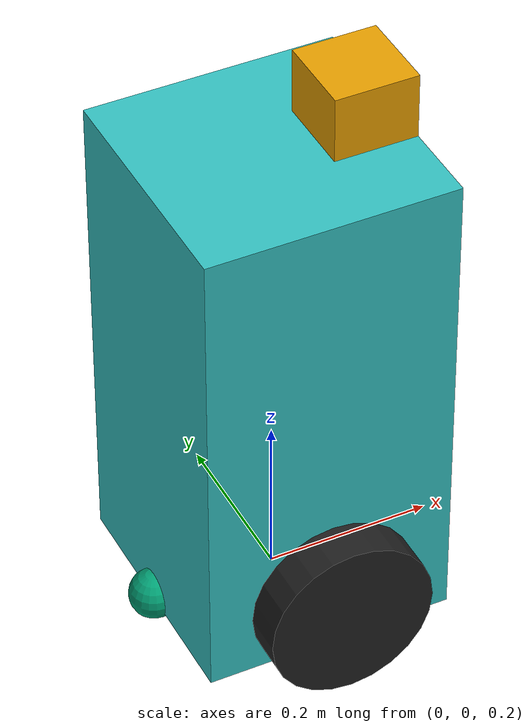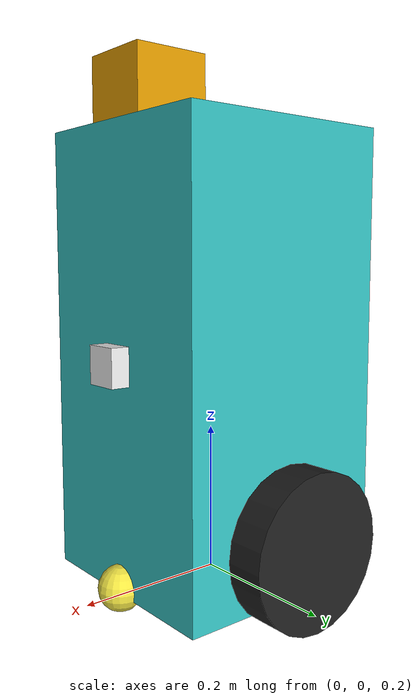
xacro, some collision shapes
<?xml version='1.0'?>

<robot name="my_robot" xmlns:xacro="http://www.ros.org/wiki/xacro">

<xacro:include filename="$(find my_robot)/urdf/my_robot.gazebo" />

  <link name="robot_footprint"></link>

  <joint name="robot_footprint_joint" type="fixed">
    <origin xyz="0 0 .5" rpy="0 0 0" />
    <parent link="robot_footprint"/>
    <child link="chassis" />
  </joint>

  <link name='chassis'>

    <inertial>
      <mass value="20.0"/>
      <origin xyz="0.0 0 0" rpy=" 0 0 0"/>
      <inertia
          ixx="0.65" ixy="0" ixz="0"
          iyy="0.65" iyz="0"
          izz="0.65"
      />
    </inertial>

    <collision name='chasis_collision'>
      <origin xyz="0 0 0" rpy=" 0 0 0"/>
      <geometry>
        <box size=".3 .3 .6"/>
      </geometry>
    </collision>

    <visual name='chassis_visual'>
      <origin xyz="0 0 0" rpy=" 0 0 0"/>
      <geometry>
        <box size=".3 .3 .6"/>
      </geometry>
    </visual>

  </link>

  <link name='back_caster'>

    <inertial>
      <mass value="0.5"/>
      <origin xyz="0 0 0" rpy=" 0 0 0"/>
      <inertia
          ixx="1e-4" ixy="0" ixz="0"
          iyy="1e-4" iyz="0"
          izz="1e-4"
      />
    </inertial>

    <collision name='back_caster_collision'>
      <origin xyz="0 0 0" rpy=" 0 0 0"/>
      <geometry>
        <sphere radius="0.0299"/>
      </geometry>
    </collision>

    <visual name='back_caster_visual'>
      <origin xyz="0 0 0" rpy=" 0 0 0"/>
      <geometry>
        <sphere radius="0.03"/>
      </geometry>
    </visual>

  </link>

  <link name='front_caster'>

    <inertial>
      <mass value="0.5"/>
      <origin xyz="0 0 0" rpy=" 0 0 0"/>
      <inertia
          ixx="1e-4" ixy="0" ixz="0"
          iyy="1e-4" iyz="0"
          izz="1e-4"
      />
    </inertial>

    <collision name='front_caster_collision'>
      <origin xyz="0 0 0" rpy=" 0 0 0"/>
      <geometry>
        <sphere radius="0.0299"/>
      </geometry>
    </collision>

    <visual name='front_caster_visual'>
      <origin xyz="0 0 0" rpy=" 0 0 0"/>
      <geometry>
        <sphere radius="0.03"/>
      </geometry>
    </visual>

  </link>

  <link name ='left_wheel'>

    <inertial>
      <mass value="2"/>
      <origin xyz="0 0 0" rpy=" 0 1.5707 1.5707"/>
      <inertia
          ixx="0.1" ixy="0" ixz="0"
          iyy="0.1" iyz="0"
          izz="0.1"
      />
    </inertial>

    <collision name='left_wheel_collision'>
      <origin xyz="0 0 0" rpy=" 0 1.5707 1.5707"/>
      <geometry>
        <cylinder radius="0.1" length="0.05"/>
      </geometry>
    </collision>

    <visual name='left_wheel_visual'>
      <origin xyz="0 0 0" rpy=" 0 1.5707 1.5707"/>
      <geometry>
        <cylinder radius ="0.1" length="0.05"/>
      </geometry>
    </visual>'

  </link>

  <link name ='right_wheel'>

    <inertial>
      <mass value="2"/>
      <origin xyz="0 0 0" rpy=" 0 1.5707 1.5707"/>
      <inertia
          ixx="0.1" ixy="0" ixz="0"
          iyy="0.1" iyz="0"
          izz="0.1"
      />
    </inertial>

    <collision name='right_wheel_collision'>
      <origin xyz="0 0 0" rpy=" 0 1.5707 1.5707"/>
      <geometry>
        <cylinder radius="0.1" length="0.05"/>
      </geometry>
    </collision>

    <visual name='right_wheel_visual'>
      <origin xyz="0 0 0" rpy=" 0 1.5707 1.5707"/>
      <geometry>
        <cylinder radius ="0.1" length="0.05"/>
      </geometry>
    </visual>

  </link>

  <joint type="continuous" name="back_caster_hinge">
    <origin xyz="-0.15 0 -0.29" rpy="0 0 0"/>
    <child link="back_caster"/>
    <parent link="chassis"/>
    <axis xyz="0 0 1"/>
    <limit effort="10000" velocity="1000"/>
    <dynamics damping="1.0" friction="1.0"/>
  </joint>

  <joint type="continuous" name="front_caster_hinge">
    <origin xyz="0.15 0 -0.29" rpy="0 0 0"/>
    <child link="front_caster"/>
    <parent link="chassis"/>
    <axis xyz="0 0 1"/>
    <limit effort="10000" velocity="1000"/>
    <dynamics damping="1.0" friction="1.0"/>
  </joint>

  <joint type="continuous" name="left_wheel_hinge">
    <origin xyz="0 0.18 -0.22" rpy="0 0 0"/>
    <child link="left_wheel"/>
    <parent link="chassis"/>
    <axis xyz="0 1 0" rpy="0 0 0"/>
    <limit effort="10000" velocity="1000"/>
    <dynamics damping="1.0" friction="1.0"/>
  </joint>

  <joint type="continuous" name="right_wheel_hinge">
    <origin xyz="0 -0.18 -0.22" rpy="0 0 0"/>
    <child link="right_wheel"/>
    <parent link="chassis"/>
    <axis xyz="0 1 0" rpy="0 0 0"/>
    <limit effort="10000" velocity="1000"/>
    <dynamics damping="1.0" friction="1.0"/>
  </joint>

  <link name='camera'>

    <inertial>
      <mass value="0.1"/>
      <origin xyz="0 0 0" rpy=" 0 0 0"/>
      <inertia
          ixx="1e-6" ixy="0" ixz="0"
          iyy="1e-6" iyz="0"
          izz="1e-6"
      />
    </inertial>

    <collision name='camera_collision'>
      <origin xyz="0 0 0" rpy=" 0 0 0"/>
      <geometry>
        <box size="0.05 0.05 0.05"/>
      </geometry>
    </collision>

    <visual name='camera_visual'>
      <origin xyz="0 0 0" rpy=" 0 0 0"/>
      <geometry>
        <box size="0.05 0.05 0.05"/>
      </geometry>
    </visual>

  </link>

  <joint type="fixed" name="camera_joint">
    <origin xyz="0.15 0 0" rpy="0 0 0"/>
    <child link="camera"/>
    <parent link="chassis"/>
    <axis xyz="0 1 0" rpy="0 0 0"/>
  </joint>

  <joint name="camera_optical_joint" type="fixed">
    <origin xyz="0.25 0 0.05" rpy="-1.5707 0 -1.5707"/>
    <parent link="camera"/>
    <child link="camera_link_optical"/>
  </joint>

  <link name="camera_link_optical">
  </link>

  <link name='hokuyo'>

    <inertial>
      <mass value="1e-5"/>
      <origin xyz="0 0 0" rpy=" 0 0 0"/>
      <inertia
          ixx="1e-6" ixy="0" ixz="0"
          iyy="1e-6" iyz="0"
          izz="1e-6"
      />
    </inertial>

    <collision name='hokuyo_collision'>
      <origin xyz="0 0 0" rpy=" 0 0 0"/>
      <geometry>
        <box size="0.1 0.1 0.1"/>
      </geometry>
    </collision>

    <visual name='hokuyo_visual'>
      <origin xyz="0 0 0" rpy=" 0 0 0"/>
      <geometry>
        <mesh filename="package://my_robot/meshes/hokuyo.dae"/>
      </geometry>
    </visual>

  </link>

  <joint type="fixed" name="hokuyo_joint">
    <origin xyz="0.1 0 .33" rpy="0 0 0"/>
    <child link="hokuyo"/>
    <parent link="chassis"/>
    <axis xyz="0 1 0" rpy="0 0 0"/>
  </joint>

  <gazebo reference="left_wheel">
    <material>Gazebo/FlatBlack</material>
  </gazebo>

  <gazebo reference="right_wheel">
    <material>Gazebo/FlatBlack</material>
  </gazebo>

  <gazebo reference="camera_link_optical">
    <material>Gazebo/Red</material>
  </gazebo>

  <gazebo reference="camera">
    <material>Gazebo/WhiteGlow</material>
  </gazebo>

  <gazebo reference="chassis">
    <material>Gazebo/TurquoiseGlowOutline</material>
  </gazebo>

</robot>
